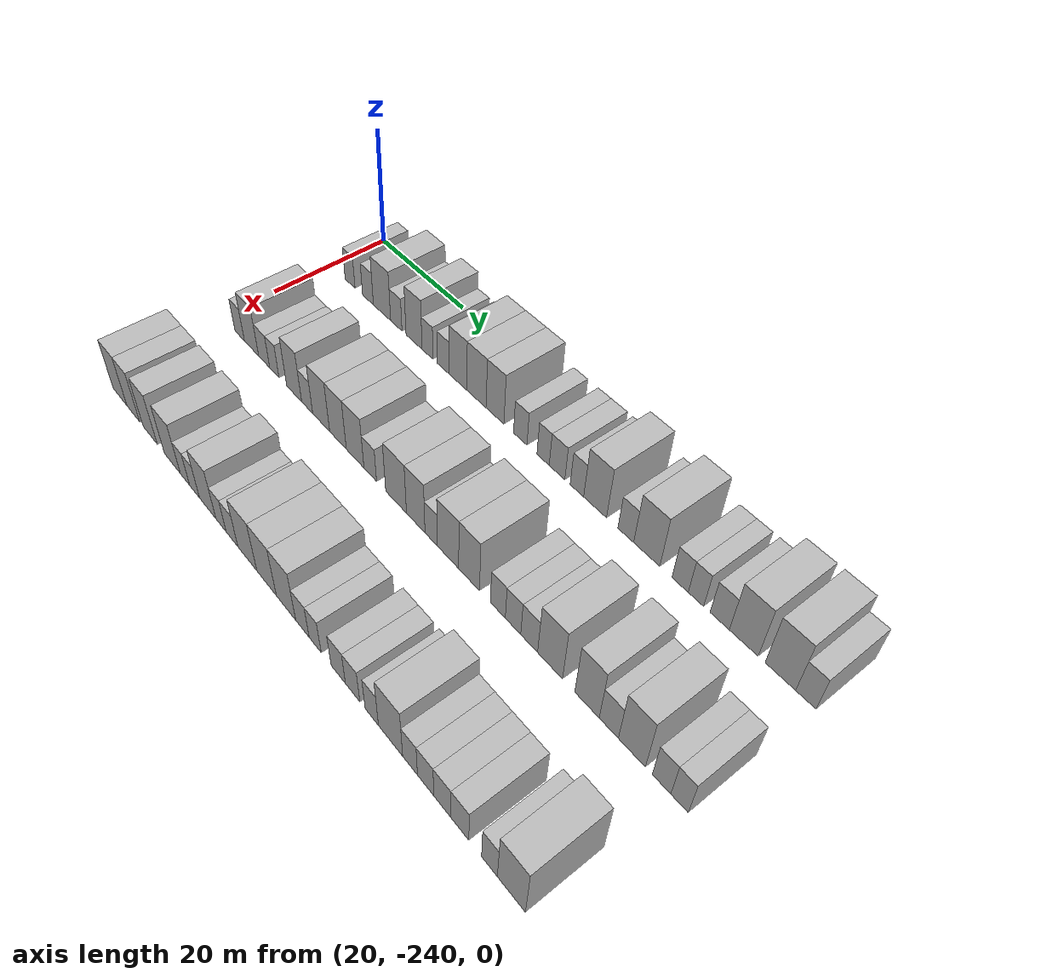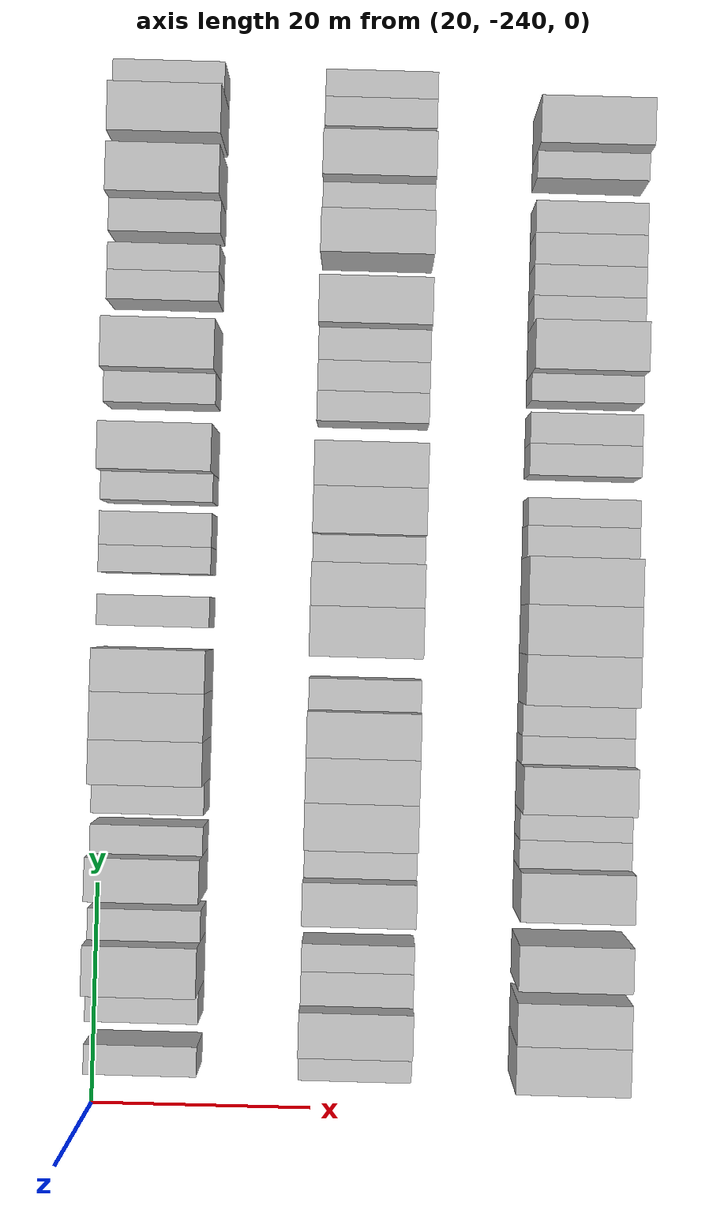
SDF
<sdf version="1.6">
 <world name="default">
  <model name="building_1">
   <static>1</static>
   <pose>25.0000 -234.6783 0 0.000000 0.000000 0.000000</pose>
   <link name="link">
    <pose>0 0 3.00 0 0 0</pose>
    <collision name="collision"><geometry><box><size>10.0000 2.6435 6.0000</size></box></geometry></collision>
    <visual name="visual">
     <cast_shadows>0</cast_shadows>
     <geometry><box><size>10.0000 2.6435 6.0000</size></box></geometry>
     <material>
      <script>
       <uri>model://HANNAS_wall/materials/scripts</uri>
       <uri>model://HANNAS_wall/materials/textures</uri>
       <name>vrc/HANNAS_wall</name>
      </script>
     </material>
    </visual>
   </link>
  </model>
  <model name="building_2">
   <static>1</static>
   <pose>25.0000 -229.9542 0 0.000000 0.000000 0.000000</pose>
   <link name="link">
    <pose>0 0 3.00 0 0 0</pose>
    <collision name="collision"><geometry><box><size>10.0000 2.8046 6.0000</size></box></geometry></collision>
    <visual name="visual">
     <cast_shadows>0</cast_shadows>
     <geometry><box><size>10.0000 2.8046 6.0000</size></box></geometry>
     <material>
      <script>
       <uri>model://HANNAS_wall/materials/scripts</uri>
       <uri>model://HANNAS_wall/materials/textures</uri>
       <name>vrc/HANNAS_wall</name>
      </script>
     </material>
    </visual>
   </link>
  </model>
  <model name="building_3">
   <static>1</static>
   <pose>25.0000 -226.3536 0 0.000000 0.000000 0.000000</pose>
   <link name="link">
    <pose>0 0 4.50 0 0 0</pose>
    <collision name="collision"><geometry><box><size>10.0000 4.3965 9.0000</size></box></geometry></collision>
    <visual name="visual">
     <cast_shadows>0</cast_shadows>
     <geometry><box><size>10.0000 4.3965 9.0000</size></box></geometry>
     <material>
      <script>
       <uri>model://HANNAS_wall/materials/scripts</uri>
       <uri>model://HANNAS_wall/materials/textures</uri>
       <name>vrc/HANNAS_wall</name>
      </script>
     </material>
    </visual>
   </link>
  </model>
  <model name="building_4">
   <static>1</static>
   <pose>25.0000 -222.7586 0 0.000000 0.000000 0.000000</pose>
   <link name="link">
    <pose>0 0 3.00 0 0 0</pose>
    <collision name="collision"><geometry><box><size>10.0000 2.7936 6.0000</size></box></geometry></collision>
    <visual name="visual">
     <cast_shadows>0</cast_shadows>
     <geometry><box><size>10.0000 2.7936 6.0000</size></box></geometry>
     <material>
      <script>
       <uri>model://HANNAS_wall/materials/scripts</uri>
       <uri>model://HANNAS_wall/materials/textures</uri>
       <name>vrc/HANNAS_wall</name>
      </script>
     </material>
    </visual>
   </link>
  </model>
  <model name="building_5">
   <static>1</static>
   <pose>25.0000 -218.4428 0 0.000000 0.000000 0.000000</pose>
   <link name="link">
    <pose>0 0 4.50 0 0 0</pose>
    <collision name="collision"><geometry><box><size>10.0000 3.8380 9.0000</size></box></geometry></collision>
    <visual name="visual">
     <cast_shadows>0</cast_shadows>
     <geometry><box><size>10.0000 3.8380 9.0000</size></box></geometry>
     <material>
      <script>
       <uri>model://HANNAS_wall/materials/scripts</uri>
       <uri>model://HANNAS_wall/materials/textures</uri>
       <name>vrc/HANNAS_wall</name>
      </script>
     </material>
    </visual>
   </link>
  </model>
  <model name="building_6">
   <static>1</static>
   <pose>25.0000 -215.2362 0 0.000000 0.000000 0.000000</pose>
   <link name="link">
    <pose>0 0 3.00 0 0 0</pose>
    <collision name="collision"><geometry><box><size>10.0000 2.5753 6.0000</size></box></geometry></collision>
    <visual name="visual">
     <cast_shadows>0</cast_shadows>
     <geometry><box><size>10.0000 2.5753 6.0000</size></box></geometry>
     <material>
      <script>
       <uri>model://HANNAS_wall/materials/scripts</uri>
       <uri>model://HANNAS_wall/materials/textures</uri>
       <name>vrc/HANNAS_wall</name>
      </script>
     </material>
    </visual>
   </link>
  </model>
  <model name="building_7">
   <static>1</static>
   <pose>25.0000 -211.5604 0 0.000000 0.000000 0.000000</pose>
   <link name="link">
    <pose>0 0 3.00 0 0 0</pose>
    <collision name="collision"><geometry><box><size>10.0000 2.7763 6.0000</size></box></geometry></collision>
    <visual name="visual">
     <cast_shadows>0</cast_shadows>
     <geometry><box><size>10.0000 2.7763 6.0000</size></box></geometry>
     <material>
      <script>
       <uri>model://HANNAS_wall/materials/scripts</uri>
       <uri>model://HANNAS_wall/materials/textures</uri>
       <name>vrc/HANNAS_wall</name>
      </script>
     </material>
    </visual>
   </link>
  </model>
  <model name="building_8">
   <static>1</static>
   <pose>25.0000 -208.2255 0 0.000000 0.000000 0.000000</pose>
   <link name="link">
    <pose>0 0 4.50 0 0 0</pose>
    <collision name="collision"><geometry><box><size>10.0000 3.8936 9.0000</size></box></geometry></collision>
    <visual name="visual">
     <cast_shadows>0</cast_shadows>
     <geometry><box><size>10.0000 3.8936 9.0000</size></box></geometry>
     <material>
      <script>
       <uri>model://HANNAS_wall/materials/scripts</uri>
       <uri>model://HANNAS_wall/materials/textures</uri>
       <name>vrc/HANNAS_wall</name>
      </script>
     </material>
    </visual>
   </link>
  </model>
  <model name="building_9">
   <static>1</static>
   <pose>25.0000 -204.1825 0 0.000000 0.000000 0.000000</pose>
   <link name="link">
    <pose>0 0 4.50 0 0 0</pose>
    <collision name="collision"><geometry><box><size>10.0000 4.1924 9.0000</size></box></geometry></collision>
    <visual name="visual">
     <cast_shadows>0</cast_shadows>
     <geometry><box><size>10.0000 4.1924 9.0000</size></box></geometry>
     <material>
      <script>
       <uri>model://HANNAS_wall/materials/scripts</uri>
       <uri>model://HANNAS_wall/materials/textures</uri>
       <name>vrc/HANNAS_wall</name>
      </script>
     </material>
    </visual>
   </link>
  </model>
  <model name="building_10">
   <static>1</static>
   <pose>25.0000 -200.2013 0 0.000000 0.000000 0.000000</pose>
   <link name="link">
    <pose>0 0 4.50 0 0 0</pose>
    <collision name="collision"><geometry><box><size>10.0000 3.7700 9.0000</size></box></geometry></collision>
    <visual name="visual">
     <cast_shadows>0</cast_shadows>
     <geometry><box><size>10.0000 3.7700 9.0000</size></box></geometry>
     <material>
      <script>
       <uri>model://HANNAS_wall/materials/scripts</uri>
       <uri>model://HANNAS_wall/materials/textures</uri>
       <name>vrc/HANNAS_wall</name>
      </script>
     </material>
    </visual>
   </link>
  </model>
  <model name="building_11">
   <static>1</static>
   <pose>25.0000 -194.9556 0 0.000000 0.000000 0.000000</pose>
   <link name="link">
    <pose>0 0 3.00 0 0 0</pose>
    <collision name="collision"><geometry><box><size>10.0000 2.7212 6.0000</size></box></geometry></collision>
    <visual name="visual">
     <cast_shadows>0</cast_shadows>
     <geometry><box><size>10.0000 2.7212 6.0000</size></box></geometry>
     <material>
      <script>
       <uri>model://HANNAS_wall/materials/scripts</uri>
       <uri>model://HANNAS_wall/materials/textures</uri>
       <name>vrc/HANNAS_wall</name>
      </script>
     </material>
    </visual>
   </link>
  </model>
  <model name="building_12">
   <static>1</static>
   <pose>25.0000 -190.3929 0 0.000000 0.000000 0.000000</pose>
   <link name="link">
    <pose>0 0 3.00 0 0 0</pose>
    <collision name="collision"><geometry><box><size>10.0000 2.4041 6.0000</size></box></geometry></collision>
    <visual name="visual">
     <cast_shadows>0</cast_shadows>
     <geometry><box><size>10.0000 2.4041 6.0000</size></box></geometry>
     <material>
      <script>
       <uri>model://HANNAS_wall/materials/scripts</uri>
       <uri>model://HANNAS_wall/materials/textures</uri>
       <name>vrc/HANNAS_wall</name>
      </script>
     </material>
    </visual>
   </link>
  </model>
  <model name="building_13">
   <static>1</static>
   <pose>25.0000 -187.6924 0 0.000000 0.000000 0.000000</pose>
   <link name="link">
    <pose>0 0 3.00 0 0 0</pose>
    <collision name="collision"><geometry><box><size>10.0000 2.9969 6.0000</size></box></geometry></collision>
    <visual name="visual">
     <cast_shadows>0</cast_shadows>
     <geometry><box><size>10.0000 2.9969 6.0000</size></box></geometry>
     <material>
      <script>
       <uri>model://HANNAS_wall/materials/scripts</uri>
       <uri>model://HANNAS_wall/materials/textures</uri>
       <name>vrc/HANNAS_wall</name>
      </script>
     </material>
    </visual>
   </link>
  </model>
  <model name="building_14">
   <static>1</static>
   <pose>25.0000 -183.9322 0 0.000000 0.000000 0.000000</pose>
   <link name="link">
    <pose>0 0 3.00 0 0 0</pose>
    <collision name="collision"><geometry><box><size>10.0000 2.5236 6.0000</size></box></geometry></collision>
    <visual name="visual">
     <cast_shadows>0</cast_shadows>
     <geometry><box><size>10.0000 2.5236 6.0000</size></box></geometry>
     <material>
      <script>
       <uri>model://HANNAS_wall/materials/scripts</uri>
       <uri>model://HANNAS_wall/materials/textures</uri>
       <name>vrc/HANNAS_wall</name>
      </script>
     </material>
    </visual>
   </link>
  </model>
  <model name="building_15">
   <static>1</static>
   <pose>25.0000 -180.5875 0 0.000000 0.000000 0.000000</pose>
   <link name="link">
    <pose>0 0 4.50 0 0 0</pose>
    <collision name="collision"><geometry><box><size>10.0000 4.1658 9.0000</size></box></geometry></collision>
    <visual name="visual">
     <cast_shadows>0</cast_shadows>
     <geometry><box><size>10.0000 4.1658 9.0000</size></box></geometry>
     <material>
      <script>
       <uri>model://HANNAS_wall/materials/scripts</uri>
       <uri>model://HANNAS_wall/materials/textures</uri>
       <name>vrc/HANNAS_wall</name>
      </script>
     </material>
    </visual>
   </link>
  </model>
  <model name="building_16">
   <static>1</static>
   <pose>25.0000 -175.1283 0 0.000000 0.000000 0.000000</pose>
   <link name="link">
    <pose>0 0 3.00 0 0 0</pose>
    <collision name="collision"><geometry><box><size>10.0000 2.7526 6.0000</size></box></geometry></collision>
    <visual name="visual">
     <cast_shadows>0</cast_shadows>
     <geometry><box><size>10.0000 2.7526 6.0000</size></box></geometry>
     <material>
      <script>
       <uri>model://HANNAS_wall/materials/scripts</uri>
       <uri>model://HANNAS_wall/materials/textures</uri>
       <name>vrc/HANNAS_wall</name>
      </script>
     </material>
    </visual>
   </link>
  </model>
  <model name="building_17">
   <static>1</static>
   <pose>25.0000 -171.5461 0 0.000000 0.000000 0.000000</pose>
   <link name="link">
    <pose>0 0 4.50 0 0 0</pose>
    <collision name="collision"><geometry><box><size>10.0000 4.4117 9.0000</size></box></geometry></collision>
    <visual name="visual">
     <cast_shadows>0</cast_shadows>
     <geometry><box><size>10.0000 4.4117 9.0000</size></box></geometry>
     <material>
      <script>
       <uri>model://HANNAS_wall/materials/scripts</uri>
       <uri>model://HANNAS_wall/materials/textures</uri>
       <name>vrc/HANNAS_wall</name>
      </script>
     </material>
    </visual>
   </link>
  </model>
  <model name="building_18">
   <static>1</static>
   <pose>25.0000 -166.0316 0 0.000000 0.000000 0.000000</pose>
   <link name="link">
    <pose>0 0 3.00 0 0 0</pose>
    <collision name="collision"><geometry><box><size>10.0000 2.6173 6.0000</size></box></geometry></collision>
    <visual name="visual">
     <cast_shadows>0</cast_shadows>
     <geometry><box><size>10.0000 2.6173 6.0000</size></box></geometry>
     <material>
      <script>
       <uri>model://HANNAS_wall/materials/scripts</uri>
       <uri>model://HANNAS_wall/materials/textures</uri>
       <name>vrc/HANNAS_wall</name>
      </script>
     </material>
    </visual>
   </link>
  </model>
  <model name="building_19">
   <static>1</static>
   <pose>25.0000 -163.5074 0 0.000000 0.000000 0.000000</pose>
   <link name="link">
    <pose>0 0 3.00 0 0 0</pose>
    <collision name="collision"><geometry><box><size>10.0000 2.4312 6.0000</size></box></geometry></collision>
    <visual name="visual">
     <cast_shadows>0</cast_shadows>
     <geometry><box><size>10.0000 2.4312 6.0000</size></box></geometry>
     <material>
      <script>
       <uri>model://HANNAS_wall/materials/scripts</uri>
       <uri>model://HANNAS_wall/materials/textures</uri>
       <name>vrc/HANNAS_wall</name>
      </script>
     </material>
    </visual>
   </link>
  </model>
  <model name="building_20">
   <static>1</static>
   <pose>25.0000 -159.8269 0 0.000000 0.000000 0.000000</pose>
   <link name="link">
    <pose>0 0 3.00 0 0 0</pose>
    <collision name="collision"><geometry><box><size>10.0000 2.9297 6.0000</size></box></geometry></collision>
    <visual name="visual">
     <cast_shadows>0</cast_shadows>
     <geometry><box><size>10.0000 2.9297 6.0000</size></box></geometry>
     <material>
      <script>
       <uri>model://HANNAS_wall/materials/scripts</uri>
       <uri>model://HANNAS_wall/materials/textures</uri>
       <name>vrc/HANNAS_wall</name>
      </script>
     </material>
    </visual>
   </link>
  </model>
  <model name="building_21">
   <static>1</static>
   <pose>25.0000 -156.2195 0 0.000000 0.000000 0.000000</pose>
   <link name="link">
    <pose>0 0 4.50 0 0 0</pose>
    <collision name="collision"><geometry><box><size>10.0000 4.2850 9.0000</size></box></geometry></collision>
    <visual name="visual">
     <cast_shadows>0</cast_shadows>
     <geometry><box><size>10.0000 4.2850 9.0000</size></box></geometry>
     <material>
      <script>
       <uri>model://HANNAS_wall/materials/scripts</uri>
       <uri>model://HANNAS_wall/materials/textures</uri>
       <name>vrc/HANNAS_wall</name>
      </script>
     </material>
    </visual>
   </link>
  </model>
  <model name="building_22">
   <static>1</static>
   <pose>25.0000 -150.9233 0 0.000000 0.000000 0.000000</pose>
   <link name="link">
    <pose>0 0 4.50 0 0 0</pose>
    <collision name="collision"><geometry><box><size>10.0000 4.3073 9.0000</size></box></geometry></collision>
    <visual name="visual">
     <cast_shadows>0</cast_shadows>
     <geometry><box><size>10.0000 4.3073 9.0000</size></box></geometry>
     <material>
      <script>
       <uri>model://HANNAS_wall/materials/scripts</uri>
       <uri>model://HANNAS_wall/materials/textures</uri>
       <name>vrc/HANNAS_wall</name>
      </script>
     </material>
    </visual>
   </link>
  </model>
  <model name="building_23">
   <static>1</static>
   <pose>25.0000 -147.3701 0 0.000000 0.000000 0.000000</pose>
   <link name="link">
    <pose>0 0 3.00 0 0 0</pose>
    <collision name="collision"><geometry><box><size>10.0000 2.7992 6.0000</size></box></geometry></collision>
    <visual name="visual">
     <cast_shadows>0</cast_shadows>
     <geometry><box><size>10.0000 2.7992 6.0000</size></box></geometry>
     <material>
      <script>
       <uri>model://HANNAS_wall/materials/scripts</uri>
       <uri>model://HANNAS_wall/materials/textures</uri>
       <name>vrc/HANNAS_wall</name>
      </script>
     </material>
    </visual>
   </link>
  </model>
  <model name="building_116">
   <static>1</static>
   <pose>44.0000 -234.6832 0 0.000000 0.000000 0.000000</pose>
   <link name="link">
    <pose>0 0 3.00 0 0 0</pose>
    <collision name="collision"><geometry><box><size>10.0000 2.6335 6.0000</size></box></geometry></collision>
    <visual name="visual">
     <cast_shadows>0</cast_shadows>
     <geometry><box><size>10.0000 2.6335 6.0000</size></box></geometry>
     <material>
      <script>
       <uri>model://HANNAS_wall/materials/scripts</uri>
       <uri>model://HANNAS_wall/materials/textures</uri>
       <name>vrc/HANNAS_wall</name>
      </script>
     </material>
    </visual>
   </link>
  </model>
  <model name="building_117">
   <static>1</static>
   <pose>44.0000 -231.3911 0 0.000000 0.000000 0.000000</pose>
   <link name="link">
    <pose>0 0 4.50 0 0 0</pose>
    <collision name="collision"><geometry><box><size>10.0000 3.9507 9.0000</size></box></geometry></collision>
    <visual name="visual">
     <cast_shadows>0</cast_shadows>
     <geometry><box><size>10.0000 3.9507 9.0000</size></box></geometry>
     <material>
      <script>
       <uri>model://HANNAS_wall/materials/scripts</uri>
       <uri>model://HANNAS_wall/materials/textures</uri>
       <name>vrc/HANNAS_wall</name>
      </script>
     </material>
    </visual>
   </link>
  </model>
  <model name="building_118">
   <static>1</static>
   <pose>44.0000 -227.9201 0 0.000000 0.000000 0.000000</pose>
   <link name="link">
    <pose>0 0 3.00 0 0 0</pose>
    <collision name="collision"><geometry><box><size>10.0000 2.9914 6.0000</size></box></geometry></collision>
    <visual name="visual">
     <cast_shadows>0</cast_shadows>
     <geometry><box><size>10.0000 2.9914 6.0000</size></box></geometry>
     <material>
      <script>
       <uri>model://HANNAS_wall/materials/scripts</uri>
       <uri>model://HANNAS_wall/materials/textures</uri>
       <name>vrc/HANNAS_wall</name>
      </script>
     </material>
    </visual>
   </link>
  </model>
  <model name="building_119">
   <static>1</static>
   <pose>44.0000 -225.1907 0 0.000000 0.000000 0.000000</pose>
   <link name="link">
    <pose>0 0 3.00 0 0 0</pose>
    <collision name="collision"><geometry><box><size>10.0000 2.4673 6.0000</size></box></geometry></collision>
    <visual name="visual">
     <cast_shadows>0</cast_shadows>
     <geometry><box><size>10.0000 2.4673 6.0000</size></box></geometry>
     <material>
      <script>
       <uri>model://HANNAS_wall/materials/scripts</uri>
       <uri>model://HANNAS_wall/materials/textures</uri>
       <name>vrc/HANNAS_wall</name>
      </script>
     </material>
    </visual>
   </link>
  </model>
  <model name="building_120">
   <static>1</static>
   <pose>44.0000 -220.0449 0 0.000000 0.000000 0.000000</pose>
   <link name="link">
    <pose>0 0 4.50 0 0 0</pose>
    <collision name="collision"><geometry><box><size>10.0000 3.8244 9.0000</size></box></geometry></collision>
    <visual name="visual">
     <cast_shadows>0</cast_shadows>
     <geometry><box><size>10.0000 3.8244 9.0000</size></box></geometry>
     <material>
      <script>
       <uri>model://HANNAS_wall/materials/scripts</uri>
       <uri>model://HANNAS_wall/materials/textures</uri>
       <name>vrc/HANNAS_wall</name>
      </script>
     </material>
    </visual>
   </link>
  </model>
  <model name="building_121">
   <static>1</static>
   <pose>44.0000 -216.7589 0 0.000000 0.000000 0.000000</pose>
   <link name="link">
    <pose>0 0 3.00 0 0 0</pose>
    <collision name="collision"><geometry><box><size>10.0000 2.7475 6.0000</size></box></geometry></collision>
    <visual name="visual">
     <cast_shadows>0</cast_shadows>
     <geometry><box><size>10.0000 2.7475 6.0000</size></box></geometry>
     <material>
      <script>
       <uri>model://HANNAS_wall/materials/scripts</uri>
       <uri>model://HANNAS_wall/materials/textures</uri>
       <name>vrc/HANNAS_wall</name>
      </script>
     </material>
    </visual>
   </link>
  </model>
  <model name="building_122">
   <static>1</static>
   <pose>44.0000 -213.3212 0 0.000000 0.000000 0.000000</pose>
   <link name="link">
    <pose>0 0 4.50 0 0 0</pose>
    <collision name="collision"><geometry><box><size>10.0000 4.1279 9.0000</size></box></geometry></collision>
    <visual name="visual">
     <cast_shadows>0</cast_shadows>
     <geometry><box><size>10.0000 4.1279 9.0000</size></box></geometry>
     <material>
      <script>
       <uri>model://HANNAS_wall/materials/scripts</uri>
       <uri>model://HANNAS_wall/materials/textures</uri>
       <name>vrc/HANNAS_wall</name>
      </script>
     </material>
    </visual>
   </link>
  </model>
  <model name="building_123">
   <static>1</static>
   <pose>44.0000 -209.2913 0 0.000000 0.000000 0.000000</pose>
   <link name="link">
    <pose>0 0 4.50 0 0 0</pose>
    <collision name="collision"><geometry><box><size>10.0000 3.9317 9.0000</size></box></geometry></collision>
    <visual name="visual">
     <cast_shadows>0</cast_shadows>
     <geometry><box><size>10.0000 3.9317 9.0000</size></box></geometry>
     <material>
      <script>
       <uri>model://HANNAS_wall/materials/scripts</uri>
       <uri>model://HANNAS_wall/materials/textures</uri>
       <name>vrc/HANNAS_wall</name>
      </script>
     </material>
    </visual>
   </link>
  </model>
  <model name="building_124">
   <static>1</static>
   <pose>44.0000 -205.3109 0 0.000000 0.000000 0.000000</pose>
   <link name="link">
    <pose>0 0 4.50 0 0 0</pose>
    <collision name="collision"><geometry><box><size>10.0000 4.0292 9.0000</size></box></geometry></collision>
    <visual name="visual">
     <cast_shadows>0</cast_shadows>
     <geometry><box><size>10.0000 4.0292 9.0000</size></box></geometry>
     <material>
      <script>
       <uri>model://HANNAS_wall/materials/scripts</uri>
       <uri>model://HANNAS_wall/materials/textures</uri>
       <name>vrc/HANNAS_wall</name>
      </script>
     </material>
    </visual>
   </link>
  </model>
  <model name="building_125">
   <static>1</static>
   <pose>44.0000 -201.8948 0 0.000000 0.000000 0.000000</pose>
   <link name="link">
    <pose>0 0 3.00 0 0 0</pose>
    <collision name="collision"><geometry><box><size>10.0000 2.8030 6.0000</size></box></geometry></collision>
    <visual name="visual">
     <cast_shadows>0</cast_shadows>
     <geometry><box><size>10.0000 2.8030 6.0000</size></box></geometry>
     <material>
      <script>
       <uri>model://HANNAS_wall/materials/scripts</uri>
       <uri>model://HANNAS_wall/materials/textures</uri>
       <name>vrc/HANNAS_wall</name>
      </script>
     </material>
    </visual>
   </link>
  </model>
  <model name="building_126">
   <static>1</static>
   <pose>44.0000 -196.2864 0 0.000000 0.000000 0.000000</pose>
   <link name="link">
    <pose>0 0 4.50 0 0 0</pose>
    <collision name="collision"><geometry><box><size>10.0000 4.4139 9.0000</size></box></geometry></collision>
    <visual name="visual">
     <cast_shadows>0</cast_shadows>
     <geometry><box><size>10.0000 4.4139 9.0000</size></box></geometry>
     <material>
      <script>
       <uri>model://HANNAS_wall/materials/scripts</uri>
       <uri>model://HANNAS_wall/materials/textures</uri>
       <name>vrc/HANNAS_wall</name>
      </script>
     </material>
    </visual>
   </link>
  </model>
  <model name="building_127">
   <static>1</static>
   <pose>44.0000 -192.1667 0 0.000000 0.000000 0.000000</pose>
   <link name="link">
    <pose>0 0 4.50 0 0 0</pose>
    <collision name="collision"><geometry><box><size>10.0000 3.8254 9.0000</size></box></geometry></collision>
    <visual name="visual">
     <cast_shadows>0</cast_shadows>
     <geometry><box><size>10.0000 3.8254 9.0000</size></box></geometry>
     <material>
      <script>
       <uri>model://HANNAS_wall/materials/scripts</uri>
       <uri>model://HANNAS_wall/materials/textures</uri>
       <name>vrc/HANNAS_wall</name>
      </script>
     </material>
    </visual>
   </link>
  </model>
  <model name="building_128">
   <static>1</static>
   <pose>44.0000 -189.0013 0 0.000000 0.000000 0.000000</pose>
   <link name="link">
    <pose>0 0 3.00 0 0 0</pose>
    <collision name="collision"><geometry><box><size>10.0000 2.5053 6.0000</size></box></geometry></collision>
    <visual name="visual">
     <cast_shadows>0</cast_shadows>
     <geometry><box><size>10.0000 2.5053 6.0000</size></box></geometry>
     <material>
      <script>
       <uri>model://HANNAS_wall/materials/scripts</uri>
       <uri>model://HANNAS_wall/materials/textures</uri>
       <name>vrc/HANNAS_wall</name>
      </script>
     </material>
    </visual>
   </link>
  </model>
  <model name="building_129">
   <static>1</static>
   <pose>44.0000 -185.6771 0 0.000000 0.000000 0.000000</pose>
   <link name="link">
    <pose>0 0 4.50 0 0 0</pose>
    <collision name="collision"><geometry><box><size>10.0000 4.1432 9.0000</size></box></geometry></collision>
    <visual name="visual">
     <cast_shadows>0</cast_shadows>
     <geometry><box><size>10.0000 4.1432 9.0000</size></box></geometry>
     <material>
      <script>
       <uri>model://HANNAS_wall/materials/scripts</uri>
       <uri>model://HANNAS_wall/materials/textures</uri>
       <name>vrc/HANNAS_wall</name>
      </script>
     </material>
    </visual>
   </link>
  </model>
  <model name="building_130">
   <static>1</static>
   <pose>44.0000 -181.6386 0 0.000000 0.000000 0.000000</pose>
   <link name="link">
    <pose>0 0 4.50 0 0 0</pose>
    <collision name="collision"><geometry><box><size>10.0000 3.9339 9.0000</size></box></geometry></collision>
    <visual name="visual">
     <cast_shadows>0</cast_shadows>
     <geometry><box><size>10.0000 3.9339 9.0000</size></box></geometry>
     <material>
      <script>
       <uri>model://HANNAS_wall/materials/scripts</uri>
       <uri>model://HANNAS_wall/materials/textures</uri>
       <name>vrc/HANNAS_wall</name>
      </script>
     </material>
    </visual>
   </link>
  </model>
  <model name="building_131">
   <static>1</static>
   <pose>44.0000 -176.3218 0 0.000000 0.000000 0.000000</pose>
   <link name="link">
    <pose>0 0 3.00 0 0 0</pose>
    <collision name="collision"><geometry><box><size>10.0000 2.6996 6.0000</size></box></geometry></collision>
    <visual name="visual">
     <cast_shadows>0</cast_shadows>
     <geometry><box><size>10.0000 2.6996 6.0000</size></box></geometry>
     <material>
      <script>
       <uri>model://HANNAS_wall/materials/scripts</uri>
       <uri>model://HANNAS_wall/materials/textures</uri>
       <name>vrc/HANNAS_wall</name>
      </script>
     </material>
    </visual>
   </link>
  </model>
  <model name="building_132">
   <static>1</static>
   <pose>44.0000 -173.6086 0 0.000000 0.000000 0.000000</pose>
   <link name="link">
    <pose>0 0 3.00 0 0 0</pose>
    <collision name="collision"><geometry><box><size>10.0000 2.7268 6.0000</size></box></geometry></collision>
    <visual name="visual">
     <cast_shadows>0</cast_shadows>
     <geometry><box><size>10.0000 2.7268 6.0000</size></box></geometry>
     <material>
      <script>
       <uri>model://HANNAS_wall/materials/scripts</uri>
       <uri>model://HANNAS_wall/materials/textures</uri>
       <name>vrc/HANNAS_wall</name>
      </script>
     </material>
    </visual>
   </link>
  </model>
  <model name="building_133">
   <static>1</static>
   <pose>44.0000 -170.7970 0 0.000000 0.000000 0.000000</pose>
   <link name="link">
    <pose>0 0 3.00 0 0 0</pose>
    <collision name="collision"><geometry><box><size>10.0000 2.8963 6.0000</size></box></geometry></collision>
    <visual name="visual">
     <cast_shadows>0</cast_shadows>
     <geometry><box><size>10.0000 2.8963 6.0000</size></box></geometry>
     <material>
      <script>
       <uri>model://HANNAS_wall/materials/scripts</uri>
       <uri>model://HANNAS_wall/materials/textures</uri>
       <name>vrc/HANNAS_wall</name>
      </script>
     </material>
    </visual>
   </link>
  </model>
  <model name="building_134">
   <static>1</static>
   <pose>44.0000 -167.2720 0 0.000000 0.000000 0.000000</pose>
   <link name="link">
    <pose>0 0 4.50 0 0 0</pose>
    <collision name="collision"><geometry><box><size>10.0000 4.1536 9.0000</size></box></geometry></collision>
    <visual name="visual">
     <cast_shadows>0</cast_shadows>
     <geometry><box><size>10.0000 4.1536 9.0000</size></box></geometry>
     <material>
      <script>
       <uri>model://HANNAS_wall/materials/scripts</uri>
       <uri>model://HANNAS_wall/materials/textures</uri>
       <name>vrc/HANNAS_wall</name>
      </script>
     </material>
    </visual>
   </link>
  </model>
  <model name="building_135">
   <static>1</static>
   <pose>44.0000 -161.2639 0 0.000000 0.000000 0.000000</pose>
   <link name="link">
    <pose>0 0 4.50 0 0 0</pose>
    <collision name="collision"><geometry><box><size>10.0000 3.8626 9.0000</size></box></geometry></collision>
    <visual name="visual">
     <cast_shadows>0</cast_shadows>
     <geometry><box><size>10.0000 3.8626 9.0000</size></box></geometry>
     <material>
      <script>
       <uri>model://HANNAS_wall/materials/scripts</uri>
       <uri>model://HANNAS_wall/materials/textures</uri>
       <name>vrc/HANNAS_wall</name>
      </script>
     </material>
    </visual>
   </link>
  </model>
  <model name="building_136">
   <static>1</static>
   <pose>44.0000 -157.8695 0 0.000000 0.000000 0.000000</pose>
   <link name="link">
    <pose>0 0 3.00 0 0 0</pose>
    <collision name="collision"><geometry><box><size>10.0000 2.9263 6.0000</size></box></geometry></collision>
    <visual name="visual">
     <cast_shadows>0</cast_shadows>
     <geometry><box><size>10.0000 2.9263 6.0000</size></box></geometry>
     <material>
      <script>
       <uri>model://HANNAS_wall/materials/scripts</uri>
       <uri>model://HANNAS_wall/materials/textures</uri>
       <name>vrc/HANNAS_wall</name>
      </script>
     </material>
    </visual>
   </link>
  </model>
  <model name="building_137">
   <static>1</static>
   <pose>44.0000 -154.4058 0 0.000000 0.000000 0.000000</pose>
   <link name="link">
    <pose>0 0 4.50 0 0 0</pose>
    <collision name="collision"><geometry><box><size>10.0000 4.0010 9.0000</size></box></geometry></collision>
    <visual name="visual">
     <cast_shadows>0</cast_shadows>
     <geometry><box><size>10.0000 4.0010 9.0000</size></box></geometry>
     <material>
      <script>
       <uri>model://HANNAS_wall/materials/scripts</uri>
       <uri>model://HANNAS_wall/materials/textures</uri>
       <name>vrc/HANNAS_wall</name>
      </script>
     </material>
    </visual>
   </link>
  </model>
  <model name="building_138">
   <static>1</static>
   <pose>44.0000 -150.0948 0 0.000000 0.000000 0.000000</pose>
   <link name="link">
    <pose>0 0 3.00 0 0 0</pose>
    <collision name="collision"><geometry><box><size>10.0000 2.6210 6.0000</size></box></geometry></collision>
    <visual name="visual">
     <cast_shadows>0</cast_shadows>
     <geometry><box><size>10.0000 2.6210 6.0000</size></box></geometry>
     <material>
      <script>
       <uri>model://HANNAS_wall/materials/scripts</uri>
       <uri>model://HANNAS_wall/materials/textures</uri>
       <name>vrc/HANNAS_wall</name>
      </script>
     </material>
    </visual>
   </link>
  </model>
  <model name="building_139">
   <static>1</static>
   <pose>44.0000 -147.5703 0 0.000000 0.000000 0.000000</pose>
   <link name="link">
    <pose>0 0 3.00 0 0 0</pose>
    <collision name="collision"><geometry><box><size>10.0000 2.4279 6.0000</size></box></geometry></collision>
    <visual name="visual">
     <cast_shadows>0</cast_shadows>
     <geometry><box><size>10.0000 2.4279 6.0000</size></box></geometry>
     <material>
      <script>
       <uri>model://HANNAS_wall/materials/scripts</uri>
       <uri>model://HANNAS_wall/materials/textures</uri>
       <name>vrc/HANNAS_wall</name>
      </script>
     </material>
    </visual>
   </link>
  </model>
  <model name="building_235">
   <static>1</static>
   <pose>63.0000 -233.9203 0 0.000000 0.000000 0.000000</pose>
   <link name="link">
    <pose>0 0 4.50 0 0 0</pose>
    <collision name="collision"><geometry><box><size>10.0000 4.1594 9.0000</size></box></geometry></collision>
    <visual name="visual">
     <cast_shadows>0</cast_shadows>
     <geometry><box><size>10.0000 4.1594 9.0000</size></box></geometry>
     <material>
      <script>
       <uri>model://HANNAS_wall/materials/scripts</uri>
       <uri>model://HANNAS_wall/materials/textures</uri>
       <name>vrc/HANNAS_wall</name>
      </script>
     </material>
    </visual>
   </link>
  </model>
  <model name="building_236">
   <static>1</static>
   <pose>63.0000 -229.9653 0 0.000000 0.000000 0.000000</pose>
   <link name="link">
    <pose>0 0 4.50 0 0 0</pose>
    <collision name="collision"><geometry><box><size>10.0000 3.7507 9.0000</size></box></geometry></collision>
    <visual name="visual">
     <cast_shadows>0</cast_shadows>
     <geometry><box><size>10.0000 3.7507 9.0000</size></box></geometry>
     <material>
      <script>
       <uri>model://HANNAS_wall/materials/scripts</uri>
       <uri>model://HANNAS_wall/materials/textures</uri>
       <name>vrc/HANNAS_wall</name>
      </script>
     </material>
    </visual>
   </link>
  </model>
  <model name="building_237">
   <static>1</static>
   <pose>63.0000 -225.0822 0 0.000000 0.000000 0.000000</pose>
   <link name="link">
    <pose>0 0 4.50 0 0 0</pose>
    <collision name="collision"><geometry><box><size>10.0000 4.0155 9.0000</size></box></geometry></collision>
    <visual name="visual">
     <cast_shadows>0</cast_shadows>
     <geometry><box><size>10.0000 4.0155 9.0000</size></box></geometry>
     <material>
      <script>
       <uri>model://HANNAS_wall/materials/scripts</uri>
       <uri>model://HANNAS_wall/materials/textures</uri>
       <name>vrc/HANNAS_wall</name>
      </script>
     </material>
    </visual>
   </link>
  </model>
  <model name="building_238">
   <static>1</static>
   <pose>63.0000 -218.9262 0 0.000000 0.000000 0.000000</pose>
   <link name="link">
    <pose>0 0 4.50 0 0 0</pose>
    <collision name="collision"><geometry><box><size>10.0000 4.2964 9.0000</size></box></geometry></collision>
    <visual name="visual">
     <cast_shadows>0</cast_shadows>
     <geometry><box><size>10.0000 4.2964 9.0000</size></box></geometry>
     <material>
      <script>
       <uri>model://HANNAS_wall/materials/scripts</uri>
       <uri>model://HANNAS_wall/materials/textures</uri>
       <name>vrc/HANNAS_wall</name>
      </script>
     </material>
    </visual>
   </link>
  </model>
  <model name="building_239">
   <static>1</static>
   <pose>63.0000 -215.5335 0 0.000000 0.000000 0.000000</pose>
   <link name="link">
    <pose>0 0 3.00 0 0 0</pose>
    <collision name="collision"><geometry><box><size>10.0000 2.4891 6.0000</size></box></geometry></collision>
    <visual name="visual">
     <cast_shadows>0</cast_shadows>
     <geometry><box><size>10.0000 2.4891 6.0000</size></box></geometry>
     <material>
      <script>
       <uri>model://HANNAS_wall/materials/scripts</uri>
       <uri>model://HANNAS_wall/materials/textures</uri>
       <name>vrc/HANNAS_wall</name>
      </script>
     </material>
    </visual>
   </link>
  </model>
  <model name="building_240">
   <static>1</static>
   <pose>63.0000 -213.0070 0 0.000000 0.000000 0.000000</pose>
   <link name="link">
    <pose>0 0 3.00 0 0 0</pose>
    <collision name="collision"><geometry><box><size>10.0000 2.5639 6.0000</size></box></geometry></collision>
    <visual name="visual">
     <cast_shadows>0</cast_shadows>
     <geometry><box><size>10.0000 2.5639 6.0000</size></box></geometry>
     <material>
      <script>
       <uri>model://HANNAS_wall/materials/scripts</uri>
       <uri>model://HANNAS_wall/materials/textures</uri>
       <name>vrc/HANNAS_wall</name>
      </script>
     </material>
    </visual>
   </link>
  </model>
  <model name="building_241">
   <static>1</static>
   <pose>63.0000 -209.6565 0 0.000000 0.000000 0.000000</pose>
   <link name="link">
    <pose>0 0 4.50 0 0 0</pose>
    <collision name="collision"><geometry><box><size>10.0000 4.1371 9.0000</size></box></geometry></collision>
    <visual name="visual">
     <cast_shadows>0</cast_shadows>
     <geometry><box><size>10.0000 4.1371 9.0000</size></box></geometry>
     <material>
      <script>
       <uri>model://HANNAS_wall/materials/scripts</uri>
       <uri>model://HANNAS_wall/materials/textures</uri>
       <name>vrc/HANNAS_wall</name>
      </script>
     </material>
    </visual>
   </link>
  </model>
  <model name="building_242">
   <static>1</static>
   <pose>63.0000 -206.3363 0 0.000000 0.000000 0.000000</pose>
   <link name="link">
    <pose>0 0 3.00 0 0 0</pose>
    <collision name="collision"><geometry><box><size>10.0000 2.5034 6.0000</size></box></geometry></collision>
    <visual name="visual">
     <cast_shadows>0</cast_shadows>
     <geometry><box><size>10.0000 2.5034 6.0000</size></box></geometry>
     <material>
      <script>
       <uri>model://HANNAS_wall/materials/scripts</uri>
       <uri>model://HANNAS_wall/materials/textures</uri>
       <name>vrc/HANNAS_wall</name>
      </script>
     </material>
    </visual>
   </link>
  </model>
  <model name="building_243">
   <static>1</static>
   <pose>63.0000 -203.6651 0 0.000000 0.000000 0.000000</pose>
   <link name="link">
    <pose>0 0 3.00 0 0 0</pose>
    <collision name="collision"><geometry><box><size>10.0000 2.8389 6.0000</size></box></geometry></collision>
    <visual name="visual">
     <cast_shadows>0</cast_shadows>
     <geometry><box><size>10.0000 2.8389 6.0000</size></box></geometry>
     <material>
      <script>
       <uri>model://HANNAS_wall/materials/scripts</uri>
       <uri>model://HANNAS_wall/materials/textures</uri>
       <name>vrc/HANNAS_wall</name>
      </script>
     </material>
    </visual>
   </link>
  </model>
  <model name="building_244">
   <static>1</static>
   <pose>63.0000 -200.0448 0 0.000000 0.000000 0.000000</pose>
   <link name="link">
    <pose>0 0 4.50 0 0 0</pose>
    <collision name="collision"><geometry><box><size>10.0000 4.4017 9.0000</size></box></geometry></collision>
    <visual name="visual">
     <cast_shadows>0</cast_shadows>
     <geometry><box><size>10.0000 4.4017 9.0000</size></box></geometry>
     <material>
      <script>
       <uri>model://HANNAS_wall/materials/scripts</uri>
       <uri>model://HANNAS_wall/materials/textures</uri>
       <name>vrc/HANNAS_wall</name>
      </script>
     </material>
    </visual>
   </link>
  </model>
  <model name="building_245">
   <static>1</static>
   <pose>63.0000 -195.6503 0 0.000000 0.000000 0.000000</pose>
   <link name="link">
    <pose>0 0 4.50 0 0 0</pose>
    <collision name="collision"><geometry><box><size>10.0000 4.3873 9.0000</size></box></geometry></collision>
    <visual name="visual">
     <cast_shadows>0</cast_shadows>
     <geometry><box><size>10.0000 4.3873 9.0000</size></box></geometry>
     <material>
      <script>
       <uri>model://HANNAS_wall/materials/scripts</uri>
       <uri>model://HANNAS_wall/materials/textures</uri>
       <name>vrc/HANNAS_wall</name>
      </script>
     </material>
    </visual>
   </link>
  </model>
  <model name="building_246">
   <static>1</static>
   <pose>63.0000 -191.3572 0 0.000000 0.000000 0.000000</pose>
   <link name="link">
    <pose>0 0 4.50 0 0 0</pose>
    <collision name="collision"><geometry><box><size>10.0000 4.1991 9.0000</size></box></geometry></collision>
    <visual name="visual">
     <cast_shadows>0</cast_shadows>
     <geometry><box><size>10.0000 4.1991 9.0000</size></box></geometry>
     <material>
      <script>
       <uri>model://HANNAS_wall/materials/scripts</uri>
       <uri>model://HANNAS_wall/materials/textures</uri>
       <name>vrc/HANNAS_wall</name>
      </script>
     </material>
    </visual>
   </link>
  </model>
  <model name="building_247">
   <static>1</static>
   <pose>63.0000 -187.8432 0 0.000000 0.000000 0.000000</pose>
   <link name="link">
    <pose>0 0 3.00 0 0 0</pose>
    <collision name="collision"><geometry><box><size>10.0000 2.8289 6.0000</size></box></geometry></collision>
    <visual name="visual">
     <cast_shadows>0</cast_shadows>
     <geometry><box><size>10.0000 2.8289 6.0000</size></box></geometry>
     <material>
      <script>
       <uri>model://HANNAS_wall/materials/scripts</uri>
       <uri>model://HANNAS_wall/materials/textures</uri>
       <name>vrc/HANNAS_wall</name>
      </script>
     </material>
    </visual>
   </link>
  </model>
  <model name="building_248">
   <static>1</static>
   <pose>63.0000 -185.1948 0 0.000000 0.000000 0.000000</pose>
   <link name="link">
    <pose>0 0 3.00 0 0 0</pose>
    <collision name="collision"><geometry><box><size>10.0000 2.4678 6.0000</size></box></geometry></collision>
    <visual name="visual">
     <cast_shadows>0</cast_shadows>
     <geometry><box><size>10.0000 2.4678 6.0000</size></box></geometry>
     <material>
      <script>
       <uri>model://HANNAS_wall/materials/scripts</uri>
       <uri>model://HANNAS_wall/materials/textures</uri>
       <name>vrc/HANNAS_wall</name>
      </script>
     </material>
    </visual>
   </link>
  </model>
  <model name="building_249">
   <static>1</static>
   <pose>63.0000 -180.5525 0 0.000000 0.000000 0.000000</pose>
   <link name="link">
    <pose>0 0 3.00 0 0 0</pose>
    <collision name="collision"><geometry><box><size>10.0000 2.8170 6.0000</size></box></geometry></collision>
    <visual name="visual">
     <cast_shadows>0</cast_shadows>
     <geometry><box><size>10.0000 2.8170 6.0000</size></box></geometry>
     <material>
      <script>
       <uri>model://HANNAS_wall/materials/scripts</uri>
       <uri>model://HANNAS_wall/materials/textures</uri>
       <name>vrc/HANNAS_wall</name>
      </script>
     </material>
    </visual>
   </link>
  </model>
  <model name="building_250">
   <static>1</static>
   <pose>63.0000 -177.7618 0 0.000000 0.000000 0.000000</pose>
   <link name="link">
    <pose>0 0 3.00 0 0 0</pose>
    <collision name="collision"><geometry><box><size>10.0000 2.7643 6.0000</size></box></geometry></collision>
    <visual name="visual">
     <cast_shadows>0</cast_shadows>
     <geometry><box><size>10.0000 2.7643 6.0000</size></box></geometry>
     <material>
      <script>
       <uri>model://HANNAS_wall/materials/scripts</uri>
       <uri>model://HANNAS_wall/materials/textures</uri>
       <name>vrc/HANNAS_wall</name>
      </script>
     </material>
    </visual>
   </link>
  </model>
  <model name="building_251">
   <static>1</static>
   <pose>63.0000 -174.1439 0 0.000000 0.000000 0.000000</pose>
   <link name="link">
    <pose>0 0 3.00 0 0 0</pose>
    <collision name="collision"><geometry><box><size>10.0000 2.4716 6.0000</size></box></geometry></collision>
    <visual name="visual">
     <cast_shadows>0</cast_shadows>
     <geometry><box><size>10.0000 2.4716 6.0000</size></box></geometry>
     <material>
      <script>
       <uri>model://HANNAS_wall/materials/scripts</uri>
       <uri>model://HANNAS_wall/materials/textures</uri>
       <name>vrc/HANNAS_wall</name>
      </script>
     </material>
    </visual>
   </link>
  </model>
  <model name="building_252">
   <static>1</static>
   <pose>63.0000 -170.7340 0 0.000000 0.000000 0.000000</pose>
   <link name="link">
    <pose>0 0 4.50 0 0 0</pose>
    <collision name="collision"><geometry><box><size>10.0000 4.3481 9.0000</size></box></geometry></collision>
    <visual name="visual">
     <cast_shadows>0</cast_shadows>
     <geometry><box><size>10.0000 4.3481 9.0000</size></box></geometry>
     <material>
      <script>
       <uri>model://HANNAS_wall/materials/scripts</uri>
       <uri>model://HANNAS_wall/materials/textures</uri>
       <name>vrc/HANNAS_wall</name>
      </script>
     </material>
    </visual>
   </link>
  </model>
  <model name="building_253">
   <static>1</static>
   <pose>63.0000 -167.2715 0 0.000000 0.000000 0.000000</pose>
   <link name="link">
    <pose>0 0 3.00 0 0 0</pose>
    <collision name="collision"><geometry><box><size>10.0000 2.5770 6.0000</size></box></geometry></collision>
    <visual name="visual">
     <cast_shadows>0</cast_shadows>
     <geometry><box><size>10.0000 2.5770 6.0000</size></box></geometry>
     <material>
      <script>
       <uri>model://HANNAS_wall/materials/scripts</uri>
       <uri>model://HANNAS_wall/materials/textures</uri>
       <name>vrc/HANNAS_wall</name>
      </script>
     </material>
    </visual>
   </link>
  </model>
  <model name="building_254">
   <static>1</static>
   <pose>63.0000 -164.6003 0 0.000000 0.000000 0.000000</pose>
   <link name="link">
    <pose>0 0 3.00 0 0 0</pose>
    <collision name="collision"><geometry><box><size>10.0000 2.7653 6.0000</size></box></geometry></collision>
    <visual name="visual">
     <cast_shadows>0</cast_shadows>
     <geometry><box><size>10.0000 2.7653 6.0000</size></box></geometry>
     <material>
      <script>
       <uri>model://HANNAS_wall/materials/scripts</uri>
       <uri>model://HANNAS_wall/materials/textures</uri>
       <name>vrc/HANNAS_wall</name>
      </script>
     </material>
    </visual>
   </link>
  </model>
  <model name="building_255">
   <static>1</static>
   <pose>63.0000 -161.8022 0 0.000000 0.000000 0.000000</pose>
   <link name="link">
    <pose>0 0 3.00 0 0 0</pose>
    <collision name="collision"><geometry><box><size>10.0000 2.8309 6.0000</size></box></geometry></collision>
    <visual name="visual">
     <cast_shadows>0</cast_shadows>
     <geometry><box><size>10.0000 2.8309 6.0000</size></box></geometry>
     <material>
      <script>
       <uri>model://HANNAS_wall/materials/scripts</uri>
       <uri>model://HANNAS_wall/materials/textures</uri>
       <name>vrc/HANNAS_wall</name>
      </script>
     </material>
    </visual>
   </link>
  </model>
  <model name="building_256">
   <static>1</static>
   <pose>63.0000 -158.9587 0 0.000000 0.000000 0.000000</pose>
   <link name="link">
    <pose>0 0 3.00 0 0 0</pose>
    <collision name="collision"><geometry><box><size>10.0000 2.8562 6.0000</size></box></geometry></collision>
    <visual name="visual">
     <cast_shadows>0</cast_shadows>
     <geometry><box><size>10.0000 2.8562 6.0000</size></box></geometry>
     <material>
      <script>
       <uri>model://HANNAS_wall/materials/scripts</uri>
       <uri>model://HANNAS_wall/materials/textures</uri>
       <name>vrc/HANNAS_wall</name>
      </script>
     </material>
    </visual>
   </link>
  </model>
  <model name="building_257">
   <static>1</static>
   <pose>63.0000 -154.3219 0 0.000000 0.000000 0.000000</pose>
   <link name="link">
    <pose>0 0 3.00 0 0 0</pose>
    <collision name="collision"><geometry><box><size>10.0000 2.4172 6.0000</size></box></geometry></collision>
    <visual name="visual">
     <cast_shadows>0</cast_shadows>
     <geometry><box><size>10.0000 2.4172 6.0000</size></box></geometry>
     <material>
      <script>
       <uri>model://HANNAS_wall/materials/scripts</uri>
       <uri>model://HANNAS_wall/materials/textures</uri>
       <name>vrc/HANNAS_wall</name>
      </script>
     </material>
    </visual>
   </link>
  </model>
  <model name="building_258">
   <static>1</static>
   <pose>63.0000 -151.0361 0 0.000000 0.000000 0.000000</pose>
   <link name="link">
    <pose>0 0 4.50 0 0 0</pose>
    <collision name="collision"><geometry><box><size>10.0000 4.1546 9.0000</size></box></geometry></collision>
    <visual name="visual">
     <cast_shadows>0</cast_shadows>
     <geometry><box><size>10.0000 4.1546 9.0000</size></box></geometry>
     <material>
      <script>
       <uri>model://HANNAS_wall/materials/scripts</uri>
       <uri>model://HANNAS_wall/materials/textures</uri>
       <name>vrc/HANNAS_wall</name>
      </script>
     </material>
    </visual>
   </link>
  </model>
 </world>
</sdf>
